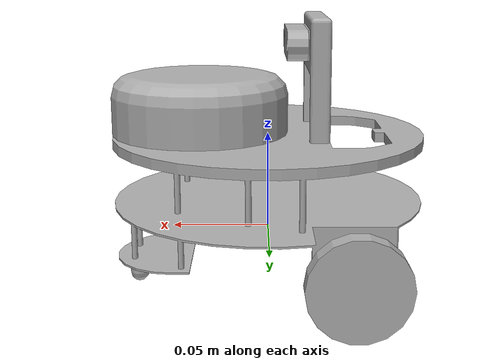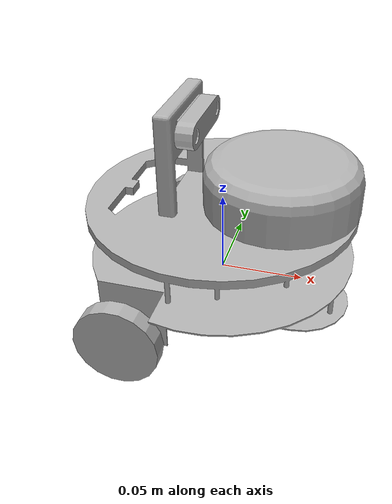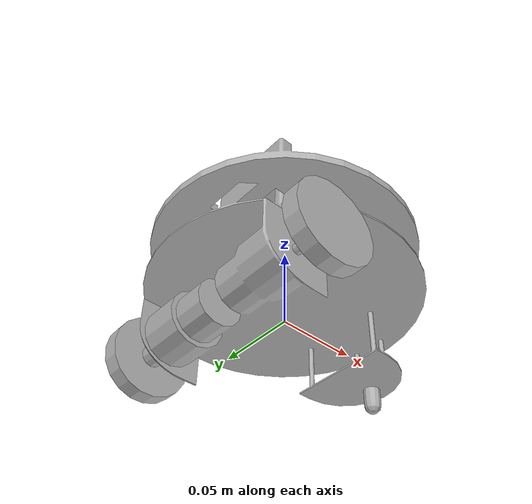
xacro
<?xml version="1.0" ?>
<robot name="firebird" xmlns:xacro="http://www.ros.org/wiki/xacro">

<xacro:include filename="$(find firebird_description)/urdf/materials.xacro" />
<xacro:include filename="$(find firebird_description)/urdf/firebird.trans" />
<xacro:include filename="$(find firebird_description)/urdf/firebird.gazebo" />
<link name="base_link">
  <inertial>
    <origin rpy="0 0 0" xyz="-0.014472647409419863 -5.858984262936555e-06 0.02936840860887686"/>
    <mass value="2"/>
    <inertia ixx="0.001356" ixy="-0.0" ixz="-0.00019" iyy="0.001312" iyz="0.0" izz="0.001526"/>
  </inertial>
  <visual>
    <origin rpy="0 0 0" xyz="0 0 0"/>
    <geometry>
      <mesh filename="package://firebird_description/meshes/base_link.stl" scale="1 1 1"/>
    </geometry>
    <material name="silver"/>
  </visual>
  <collision>
    <origin rpy="0 0 0" xyz="0 0 0"/>
    <geometry>
      <mesh filename="package://firebird_description/meshes/base_link.stl" scale="1 1 1"/>
    </geometry>
  </collision>
</link>

<link name="right_wheel_1">
  <inertial>
    <origin rpy="0 0 0" xyz="4.439504319719845e-14 -0.004446641576205876 3.469446951953614e-18"/>
    <mass value="0.01933021152331733"/>
    <inertia ixx="3e-06" ixy="-0.0" ixz="0.0" iyy="6e-06" iyz="-0.0" izz="3e-06"/>
  </inertial>
  <visual>
    <origin rpy="0 0 0" xyz="0.04 0.069915 0.006"/>
    <geometry>
      <mesh filename="package://firebird_description/meshes/right_wheel_1.stl" scale="1 1 1"/>
    </geometry>
    <material name="silver"/>
  </visual>
  <collision>
    <origin rpy="0 0 0" xyz="0.04 0.069915 0.006"/>
    <geometry>
      <mesh filename="package://firebird_description/meshes/right_wheel_1.stl" scale="1 1 1"/>
    </geometry>
  </collision>
</link>

<link name="left_wheel_1">
  <inertial>
    <origin rpy="0 0 0" xyz="4.439504319719845e-14 0.004446641576205876 -6.071532165918825e-18"/>
    <mass value="0.01933021152331733"/>
    <inertia ixx="3e-06" ixy="0.0" ixz="-0.0" iyy="6e-06" iyz="-0.0" izz="3e-06"/>
  </inertial>
  <visual>
    <origin rpy="0 0 0" xyz="0.04 -0.069915 0.006"/>
    <geometry>
      <mesh filename="package://firebird_description/meshes/left_wheel_1.stl" scale="1 1 1"/>
    </geometry>
    <material name="silver"/>
  </visual>
  <collision>
    <origin rpy="0 0 0" xyz="0.04 -0.069915 0.006"/>
    <geometry>
      <mesh filename="package://firebird_description/meshes/left_wheel_1.stl" scale="1 1 1"/>
    </geometry>
  </collision>
</link>

<link name="caster_wheel_1">
  <inertial>
    <origin rpy="0 0 0" xyz="-7.84233789019595e-13 4.213519037308031e-17 -0.006718750000000044"/>
    <mass value="0.002827433388230721"/>
    <inertia ixx="0.0" ixy="0.0" ixz="0.0" iyy="0.0" iyz="0.0" izz="0.0"/>
  </inertial>
  <visual>
    <origin rpy="0 0 0" xyz="-0.069 -0.0 0.016"/>
    <geometry>
      <mesh filename="package://firebird_description/meshes/caster_wheel_1.stl" scale="1 1 1"/>
    </geometry>
    <material name="silver"/>
  </visual>
  <collision>
    <origin rpy="0 0 0" xyz="-0.069 -0.0 0.016"/>
    <geometry>
      <mesh filename="package://firebird_description/meshes/caster_wheel_1.stl" scale="1 1 1"/>
    </geometry>
  </collision>
</link>

<link name="laser_frame">
  <inertial>
    <origin rpy="0 0 0" xyz="5.960464413701239e-10 1.862645121475383e-11 0.014606571716925011"/>
    <mass value="0.19912725963937622"/>
    <inertia ixx="0.000114" ixy="-0.0" ixz="0.0" iyy="0.000114" iyz="-0.0" izz="0.000199"/>
  </inertial>
  <visual>
    <origin rpy="0 0 0" xyz="-0.035 -0.0 -0.051"/>
    <geometry>
      <mesh filename="package://firebird_description/meshes/Component5_1.stl" scale="1 1 1"/>
    </geometry>
    <material name="silver"/>
  </visual>
  <collision>
    <origin rpy="0 0 0" xyz="-0.035 -0.0 -0.051"/>
    <geometry>
      <mesh filename="package://firebird_description/meshes/Component5_1.stl" scale="1 1 1"/>
    </geometry>
  </collision>
</link>

<link name="stereo_cam_1">
  <inertial>
    <origin rpy="0 0 0" xyz="0.004933891825893098 -6.499104466206011e-14 0.0"/>
    <mass value="0.008113974609440668"/>
    <inertia ixx="2e-06" ixy="0.0" ixz="-0.0" iyy="0.0" iyz="-0.0" izz="2e-06"/>
  </inertial>
  <visual>
    <origin rpy="0 0 0" xyz="0.019 -0.0 -0.0975"/>
    <geometry>
      <mesh filename="package://firebird_description/meshes/stereo_cam_1.stl" scale="1 1 1"/>
    </geometry>
    <material name="silver"/>
  </visual>
  <collision>
    <origin rpy="0 0 0" xyz="0.019 -0.0 -0.0975"/>
    <geometry>
      <mesh filename="package://firebird_description/meshes/stereo_cam_1.stl" scale="1 1 1"/>
    </geometry>
  </collision>
</link>

<joint name="right_wheel_joint" type="continuous">
  <origin rpy="0 0 0" xyz="-0.04 -0.069915 -0.006"/>
  <parent link="base_link"/>
  <child link="right_wheel_1"/>
  <axis xyz="0.0 1.0 0.0"/>
</joint>

<joint name="left_wheel_joint" type="continuous">
  <origin rpy="0 0 0" xyz="-0.04 0.069915 -0.006"/>
  <parent link="base_link"/>
  <child link="left_wheel_1"/>
  <axis xyz="0.0 1.0 0.0"/>
</joint>

<joint name="caster_joint" type="fixed">
  <origin rpy="0 0 0" xyz="0.069 0.0 -0.016"/>
  <parent link="base_link"/>
  <child link="caster_wheel_1"/>
</joint>

<joint name="lidar_joint" type="fixed">
  <origin rpy="0 0 3.14" xyz="0.035 0.0 0.051"/>
  <parent link="base_link"/>
  <child link="laser_frame"/>
</joint>

<joint name="stereo_cam_joint" type="fixed">
  <origin rpy="0 0 0" xyz="-0.019 0.0 0.0975"/>
  <parent link="base_link"/>
  <child link="stereo_cam_1"/>
</joint>

</robot>

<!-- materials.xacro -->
<robot name="firebird" xmlns:xacro="http://www.ros.org/wiki/xacro" >

<material name="silver">
  <color rgba="0.700 0.700 0.700 1.000"/>
</material>

</robot>

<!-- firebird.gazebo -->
<robot name="firebird" xmlns:xacro="http://www.ros.org/wiki/xacro" >

<xacro:property name="body_color" value="Gazebo/Silver" />

<gazebo>
  <plugin filename="libgazebo_ros_control.so" name="control"/>
</gazebo>

<gazebo>
  <plugin name="differential_drive_controller" filename="libgazebo_ros_diff_drive.so">
    <updateRate>50</updateRate>
    <leftJoint>left_wheel_joint</leftJoint>
    <rightJoint>right_wheel_joint</rightJoint>
    <wheelSeparation>0.16</wheelSeparation>
    <wheelDiameter>0.05</wheelDiameter>
    <wheelAcceleration>0.2</wheelAcceleration>
    <wheelTorque>10</wheelTorque>
    <commandTopic>cmd_vel</commandTopic>
    <odometryTopic>odom</odometryTopic>
    <odometryFrame>odom</odometryFrame>
    <robotBaseFrame>base_link</robotBaseFrame>
    <odometrySource>1</odometrySource>
    <publishWheelTF>true</publishWheelTF>
    <publishOdom>true</publishOdom>
    <publishWheelJointState>true</publishWheelJointState>
    <legacyMode>false</legacyMode>
  </plugin>
</gazebo>

<gazebo reference="laser_frame">
    <sensor type="gpu_ray" name="rplidar_sensor">
      <pose>0 0 0 0 0 0</pose>
      <visualize>true</visualize>
      <update_rate>40</update_rate>
      <ray>
        <scan>
          <horizontal>
            <samples>720</samples>
            <resolution>1</resolution>
            <min_angle>-3.141592</min_angle>
            <max_angle>3.141592</max_angle>
          </horizontal>
        </scan>
        <range>
          <min>0.10</min>
          <max>8.0</max>
          <resolution>0.01</resolution>
        </range>
        <noise>
          <type>gaussian</type>
          <mean>0.0</mean>
          <stddev>0.01</stddev>
        </noise>
      </ray>
      <plugin name="gazebo_ros_rplidar_controller" filename="libgazebo_ros_gpu_laser.so">
        <topicName>/scan</topicName>
        <frameName>laser_frame</frameName>
      </plugin>
    </sensor>
  </gazebo>

<gazebo reference="stereo_cam_1">
  <sensor name="stereo_cam_1_camera" type="depth">
    <pose>3 0 0 0 0 0</pose>
    <update_rate>20</update_rate>
    <camera>
      <horizontal_fov>1.047198</horizontal_fov>
      <image>
        <width>640</width>
        <height>480</height>
        <format>R8G8B8</format>
      </image>
      <clip>
        <near>0.05</near>
        <far>3</far>
      </clip>
    </camera>
    <plugin name="stereo_cam_1_controller" filename="libgazebo_ros_openni_kinect.so">
      <baseline>0.2</baseline>
      <alwaysOn>true</alwaysOn>
      <updateRate>1.0</updateRate>
      <cameraName>camera_name_ir</cameraName>
      <imageTopicName>/camera_name/color/image_raw</imageTopicName>
      <cameraInfoTopicName>/camera_name/color/camera_info</cameraInfoTopicName>
      <depthImageTopicName>/camera_name/depth/image_raw</depthImageTopicName>
      <depthImageInfoTopicName>/camera_name/depth/camera_info</depthImageInfoTopicName>
      <pointCloudTopicName>/camera_name/depth/points</pointCloudTopicName>
      <frameName>stereo_cam_1</frameName>
      <pointCloudCutoff>0.5</pointCloudCutoff>
      <pointCloudCutoffMax>3.0</pointCloudCutoffMax>
      <distortionK1>0.00000001</distortionK1>
      <distortionK2>0.00000001</distortionK2>
      <distortionK3>0.00000001</distortionK3>
      <distortionT1>0.00000001</distortionT1>
      <distortionT2>0.00000001</distortionT2>
      <CxPrime>0</CxPrime>
      <Cx>0</Cx>
      <Cy>0</Cy>
      <focalLength>0</focalLength>
      <hackBaseline>0</hackBaseline>
    </plugin>
  </sensor>
</gazebo>

<gazebo reference="base_link">
  <material>${body_color}</material>
  <mu1>0.2</mu1>
  <mu2>0.2</mu2>
  <selfCollide>true</selfCollide>
  <gravity>true</gravity>
</gazebo>

<gazebo reference="right_wheel_1">
  <material>${body_color}</material>
  <mu1>100.0</mu1>
  <mu2>100.0</mu2>
  <selfCollide>true</selfCollide>
</gazebo>

<gazebo reference="left_wheel_1">
  <material>${body_color}</material>
  <mu1>100.0</mu1>
  <mu2>100.0</mu2>
  <selfCollide>true</selfCollide>
</gazebo>

<gazebo reference="caster_wheel_1">
  <material>${body_color}</material>
  <mu1>0.001</mu1>
  <mu2>0.001</mu2>
  <selfCollide>true</selfCollide>
</gazebo>

<gazebo reference="laser">
  <material>${body_color}</material>
  <mu1>0.2</mu1>
  <mu2>0.2</mu2>
  <selfCollide>true</selfCollide>
</gazebo>

<gazebo reference="stereo_cam_1">
  <material>${body_color}</material>
  <mu1>0.2</mu1>
  <mu2>0.2</mu2>
  <selfCollide>true</selfCollide>
</gazebo>

</robot>
